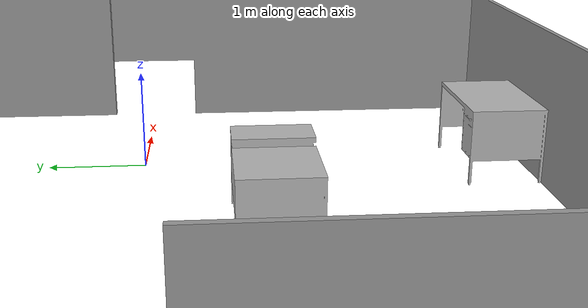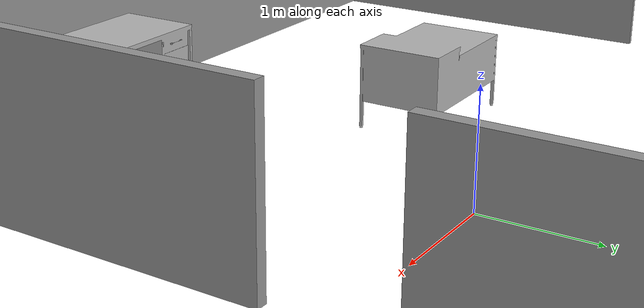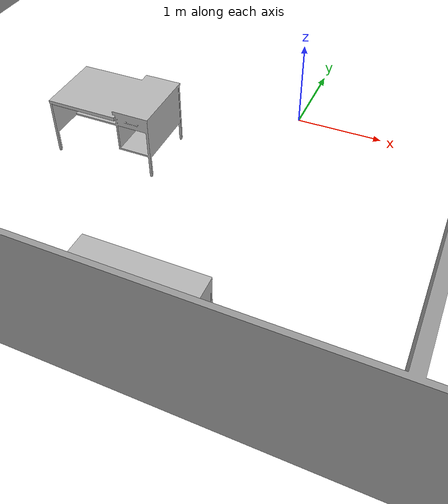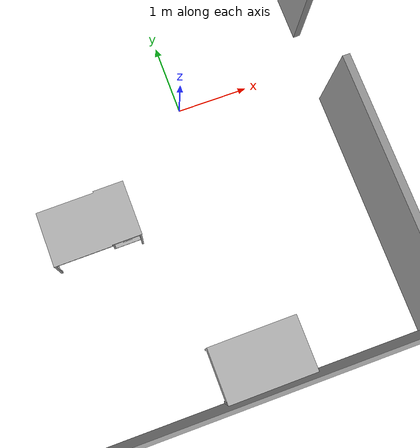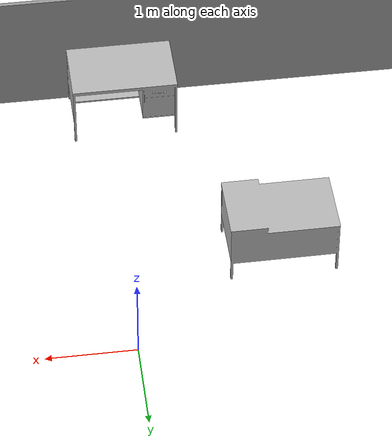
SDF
<sdf version="1.4">
 <world name="default">
  <model name="rnd_room_c3_a">
   <link name="link_0">
    <inertial>
     <mass>1</mass>
     <inertia>
      <ixx>0.166667</ixx>
      <ixy>0</ixy>
      <ixz>0</ixz>
      <iyy>0.166667</iyy>
      <iyz>0</iyz>
      <izz>0.166667</izz>
     </inertia>
    </inertial>
    <visual name="visual">
     <geometry><mesh><uri>model://RandomRooms/rnd_room_c2_04.dae</uri><scale>1 1 1</scale></mesh></geometry>
     <material>
      <lighting>1</lighting>
      <script><uri>model://RandomRooms/rnd_room_c2_04.dae</uri><name>Gazebo/Grey</name></script>
      <shader type="pixel"><normal_map>__default__</normal_map></shader>
     </material>
    </visual>
    <collision name="collision">
     <geometry><mesh><uri>model://RandomRooms/rnd_room_c2_04.dae</uri><scale>1 1 1</scale></mesh></geometry>
     <surface>
      <friction>
       <ode><mu>1</mu><mu2>1</mu2><fdir1>0 0 0</fdir1><slip1>0</slip1><slip2>0</slip2></ode>
       <torsional>
        <coefficient>1</coefficient>
        <patch_radius>0</patch_radius>
        <surface_radius>0</surface_radius>
        <use_patch_radius>1</use_patch_radius>
        <ode><slip>0</slip></ode>
       </torsional>
      </friction>
      <bounce><restitution_coefficient>0</restitution_coefficient><threshold>1e+06</threshold></bounce>
      <contact>
       <collide_without_contact>0</collide_without_contact>
       <collide_without_contact_bitmask>1</collide_without_contact_bitmask>
       <collide_bitmask>1</collide_bitmask>
       <ode>
        <soft_cfm>0</soft_cfm>
        <soft_erp>0.2</soft_erp>
        <kp>1e+13</kp>
        <kd>1</kd>
        <max_vel>0.01</max_vel>
        <min_depth>0</min_depth>
       </ode>
       <bullet>
        <split_impulse>1</split_impulse>
        <split_impulse_penetration_threshold>-0.01</split_impulse_penetration_threshold>
        <soft_cfm>0</soft_cfm>
        <soft_erp>0.2</soft_erp>
        <kp>1e+13</kp>
        <kd>1</kd>
       </bullet>
      </contact>
     </surface>
    </collision>
   </link>
   <static>1</static>
  </model>
  <model name="Desk_03_1">
   <link name="link_0">
    <inertial>
     <mass>25</mass>
     <inertia>
      <ixx>0.166667</ixx>
      <ixy>0</ixy>
      <ixz>0</ixz>
      <iyy>0.166667</iyy>
      <iyz>0</iyz>
      <izz>0.166667</izz>
     </inertia>
    </inertial>
    <visual name="visual">
     <geometry><mesh><uri>model://BioRoboticsLab/meshes/Desk_03.dae</uri><scale>1 1 1</scale></mesh></geometry>
     <material><lighting>1</lighting><shader type="pixel"/></material>
    </visual>
    <collision name="collision">
     <geometry><mesh><uri>model://BioRoboticsLab/meshes/Desk_03.dae</uri><scale>1 1 1</scale></mesh></geometry>
     <surface>
      <friction>
       <ode><mu>1</mu><mu2>1</mu2><fdir1>0 0 0</fdir1><slip1>0</slip1><slip2>0</slip2></ode>
       <torsional>
        <coefficient>1</coefficient>
        <patch_radius>0</patch_radius>
        <surface_radius>0</surface_radius>
        <use_patch_radius>1</use_patch_radius>
        <ode><slip>0</slip></ode>
       </torsional>
      </friction>
      <bounce><restitution_coefficient>0</restitution_coefficient><threshold>1e+06</threshold></bounce>
      <contact>
       <collide_without_contact>0</collide_without_contact>
       <collide_without_contact_bitmask>1</collide_without_contact_bitmask>
       <collide_bitmask>1</collide_bitmask>
       <ode>
        <soft_cfm>0</soft_cfm>
        <soft_erp>0.2</soft_erp>
        <kp>1e+13</kp>
        <kd>1</kd>
        <max_vel>0.01</max_vel>
        <min_depth>0</min_depth>
       </ode>
       <bullet>
        <split_impulse>1</split_impulse>
        <split_impulse_penetration_threshold>-0.01</split_impulse_penetration_threshold>
        <soft_cfm>0</soft_cfm>
        <soft_erp>0.2</soft_erp>
        <kp>1e+13</kp>
        <kd>1</kd>
       </bullet>
      </contact>
     </surface>
    </collision>
   </link>
   <static>1</static>
   <pose>-0.233543 -3.62275 0 0 -0 0.004657</pose>
  </model>
  <model name="Desk_02_2">
   <link name="link_0">
    <inertial>
     <mass>19</mass>
     <inertia>
      <ixx>0.166667</ixx>
      <ixy>0</ixy>
      <ixz>0</ixz>
      <iyy>0.166667</iyy>
      <iyz>0</iyz>
      <izz>0.166667</izz>
     </inertia>
    </inertial>
    <visual name="visual">
     <geometry><mesh><uri>model://BioRoboticsLab/meshes/Desk_02.dae</uri><scale>1 1 1</scale></mesh></geometry>
     <material><lighting>1</lighting><shader type="pixel"/></material>
    </visual>
    <collision name="collision">
     <geometry><mesh><uri>model://BioRoboticsLab/meshes/Desk_02.dae</uri><scale>1 1 1</scale></mesh></geometry>
     <surface>
      <friction>
       <ode><mu>1</mu><mu2>1</mu2><fdir1>0 0 0</fdir1><slip1>0</slip1><slip2>0</slip2></ode>
       <torsional>
        <coefficient>1</coefficient>
        <patch_radius>0</patch_radius>
        <surface_radius>0</surface_radius>
        <use_patch_radius>1</use_patch_radius>
        <ode><slip>0</slip></ode>
       </torsional>
      </friction>
      <bounce><restitution_coefficient>0</restitution_coefficient><threshold>1e+06</threshold></bounce>
      <contact>
       <collide_without_contact>0</collide_without_contact>
       <collide_without_contact_bitmask>1</collide_without_contact_bitmask>
       <collide_bitmask>1</collide_bitmask>
       <ode>
        <soft_cfm>0</soft_cfm>
        <soft_erp>0.2</soft_erp>
        <kp>1e+13</kp>
        <kd>1</kd>
        <max_vel>0.01</max_vel>
        <min_depth>0</min_depth>
       </ode>
       <bullet>
        <split_impulse>1</split_impulse>
        <split_impulse_penetration_threshold>-0.01</split_impulse_penetration_threshold>
        <soft_cfm>0</soft_cfm>
        <soft_erp>0.2</soft_erp>
        <kp>1e+13</kp>
        <kd>1</kd>
       </bullet>
      </contact>
     </surface>
    </collision>
   </link>
   <static>1</static>
   <pose>-1.56343 -1.26126 0 0 -0 -3.13533</pose>
  </model>
 </world>
</sdf>
